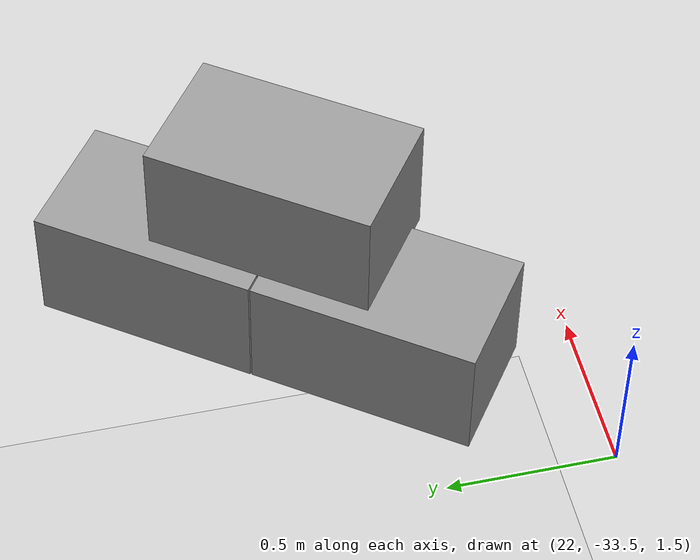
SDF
<sdf version="1.7">
 <world name="default">
  <model name="ground_plane">
   <static>1</static>
   <link name="link">
    <collision name="collision">
     <geometry><plane><normal>0 0 1</normal><size>100 100</size></plane></geometry>
     <surface>
      <contact><collide_bitmask>65535</collide_bitmask></contact>
      <friction><ode><mu>100</mu><mu2>50</mu2></ode></friction>
     </surface>
    </collision>
    <visual name="visual">
     <cast_shadows>0</cast_shadows>
     <geometry><plane><normal>0 0 1</normal><size>100 100</size></plane></geometry>
     <material>
      <script><uri>file://media/materials/scripts/gazebo.material</uri><name>Gazebo/Grey</name></script>
     </material>
    </visual>
   </link>
  </model>
  <model name="Add_Box_clone_clone">
   <link name="link">
    <inertial>
     <mass>1</mass>
     <inertia>
      <ixx>0.166667</ixx>
      <ixy>0</ixy>
      <ixz>0</ixz>
      <iyy>0.166667</iyy>
      <iyz>0</iyz>
      <izz>0.166667</izz>
     </inertia>
    </inertial>
    <kinematic>1</kinematic>
    <gravity>0</gravity>
    <visual name="visual">
     <geometry><box><size>0.686 0.406 0.381</size></box></geometry>
     <material>
      <script><name>Gazebo/Grey</name><uri>file://media/materials/scripts/gazebo.material</uri></script>
      <shader type="pixel"><normal_map>__default__</normal_map></shader>
      <ambient>0.3 0.3 0.3 1</ambient>
      <diffuse>0.7 0.7 0.7 1</diffuse>
      <specular>0.01 0.01 0.01 1</specular>
      <emissive>0 0 0 1</emissive>
     </material>
    </visual>
    <collision name="collision">
     <geometry><box><size>1 1 1</size></box></geometry>
     <surface>
      <friction>
       <ode><mu>1</mu><mu2>1</mu2><fdir1>0 0 0</fdir1><slip1>0</slip1><slip2>0</slip2></ode>
       <torsional>
        <coefficient>1</coefficient>
        <patch_radius>0</patch_radius>
        <surface_radius>0</surface_radius>
        <use_patch_radius>1</use_patch_radius>
        <ode><slip>0</slip></ode>
       </torsional>
      </friction>
      <bounce><restitution_coefficient>0</restitution_coefficient><threshold>1e+06</threshold></bounce>
      <contact>
       <collide_without_contact>0</collide_without_contact>
       <collide_without_contact_bitmask>1</collide_without_contact_bitmask>
       <collide_bitmask>1</collide_bitmask>
       <ode>
        <soft_cfm>0</soft_cfm>
        <soft_erp>0.2</soft_erp>
        <kp>1e+13</kp>
        <kd>1</kd>
        <max_vel>0.01</max_vel>
        <min_depth>0</min_depth>
       </ode>
       <bullet>
        <split_impulse>1</split_impulse>
        <split_impulse_penetration_threshold>-0.01</split_impulse_penetration_threshold>
        <soft_cfm>0</soft_cfm>
        <soft_erp>0.2</soft_erp>
        <kp>1e+13</kp>
        <kd>1</kd>
       </bullet>
      </contact>
     </surface>
    </collision>
   </link>
   <link name="link_clone">
    <inertial>
     <mass>1</mass>
     <inertia>
      <ixx>0.166667</ixx>
      <ixy>0</ixy>
      <ixz>0</ixz>
      <iyy>0.166667</iyy>
      <iyz>0</iyz>
      <izz>0.166667</izz>
     </inertia>
    </inertial>
    <pose>-0.343354 -0.063316 0.354303 1e-05 -0 0</pose>
    <gravity>0</gravity>
    <visual name="visual">
     <geometry><box><size>0.686 0.406 0.381</size></box></geometry>
     <material>
      <script><name>Gazebo/Grey</name><uri>file://media/materials/scripts/gazebo.material</uri></script>
      <shader type="pixel"><normal_map>__default__</normal_map></shader>
      <ambient>0.3 0.3 0.3 1</ambient>
      <diffuse>0.7 0.7 0.7 1</diffuse>
      <specular>0.01 0.01 0.01 1</specular>
      <emissive>0 0 0 1</emissive>
     </material>
    </visual>
    <collision name="collision">
     <geometry><box><size>1 1 1</size></box></geometry>
     <surface>
      <friction>
       <ode><mu>1</mu><mu2>1</mu2><fdir1>0 0 0</fdir1><slip1>0</slip1><slip2>0</slip2></ode>
       <torsional>
        <coefficient>1</coefficient>
        <patch_radius>0</patch_radius>
        <surface_radius>0</surface_radius>
        <use_patch_radius>1</use_patch_radius>
        <ode><slip>0</slip></ode>
       </torsional>
      </friction>
      <bounce><restitution_coefficient>0</restitution_coefficient><threshold>1e+06</threshold></bounce>
      <contact>
       <collide_without_contact>0</collide_without_contact>
       <collide_without_contact_bitmask>1</collide_without_contact_bitmask>
       <collide_bitmask>1</collide_bitmask>
       <ode>
        <soft_cfm>0</soft_cfm>
        <soft_erp>0.2</soft_erp>
        <kp>1e+13</kp>
        <kd>1</kd>
        <max_vel>0.01</max_vel>
        <min_depth>0</min_depth>
       </ode>
       <bullet>
        <split_impulse>1</split_impulse>
        <split_impulse_penetration_threshold>-0.01</split_impulse_penetration_threshold>
        <soft_cfm>0</soft_cfm>
        <soft_erp>0.2</soft_erp>
        <kp>1e+13</kp>
        <kd>1</kd>
       </bullet>
      </contact>
     </surface>
    </collision>
   </link>
   <link name="link_clone_clone">
    <inertial>
     <mass>1</mass>
     <inertia>
      <ixx>0.166667</ixx>
      <ixy>0</ixy>
      <ixz>0</ixz>
      <iyy>0.166667</iyy>
      <iyz>0</iyz>
      <izz>0.166667</izz>
     </inertia>
    </inertial>
    <pose>-0.690786 -0.000183 -1e-05 2e-05 -0 0</pose>
    <gravity>0</gravity>
    <visual name="visual">
     <geometry><box><size>0.686 0.406 0.381</size></box></geometry>
     <material>
      <script><name>Gazebo/Grey</name><uri>file://media/materials/scripts/gazebo.material</uri></script>
      <shader type="pixel"><normal_map>__default__</normal_map></shader>
      <ambient>0.3 0.3 0.3 1</ambient>
      <diffuse>0.7 0.7 0.7 1</diffuse>
      <specular>0.01 0.01 0.01 1</specular>
      <emissive>0 0 0 1</emissive>
     </material>
    </visual>
    <collision name="collision">
     <geometry><box><size>1 1 1</size></box></geometry>
     <surface>
      <friction>
       <ode><mu>1</mu><mu2>1</mu2><fdir1>0 0 0</fdir1><slip1>0</slip1><slip2>0</slip2></ode>
       <torsional>
        <coefficient>1</coefficient>
        <patch_radius>0</patch_radius>
        <surface_radius>0</surface_radius>
        <use_patch_radius>1</use_patch_radius>
        <ode><slip>0</slip></ode>
       </torsional>
      </friction>
      <bounce><restitution_coefficient>0</restitution_coefficient><threshold>1e+06</threshold></bounce>
      <contact>
       <collide_without_contact>0</collide_without_contact>
       <collide_without_contact_bitmask>1</collide_without_contact_bitmask>
       <collide_bitmask>1</collide_bitmask>
       <ode>
        <soft_cfm>0</soft_cfm>
        <soft_erp>0.2</soft_erp>
        <kp>1e+13</kp>
        <kd>1</kd>
        <max_vel>0.01</max_vel>
        <min_depth>0</min_depth>
       </ode>
       <bullet>
        <split_impulse>1</split_impulse>
        <split_impulse_penetration_threshold>-0.01</split_impulse_penetration_threshold>
        <soft_cfm>0</soft_cfm>
        <soft_erp>0.2</soft_erp>
        <kp>1e+13</kp>
        <kd>1</kd>
       </bullet>
      </contact>
     </surface>
    </collision>
   </link>
   <static>0</static>
   <pose>22.9483 -32.3937 1.61518 0 -0 0.950497</pose>
  </model>
 </world>
</sdf>
